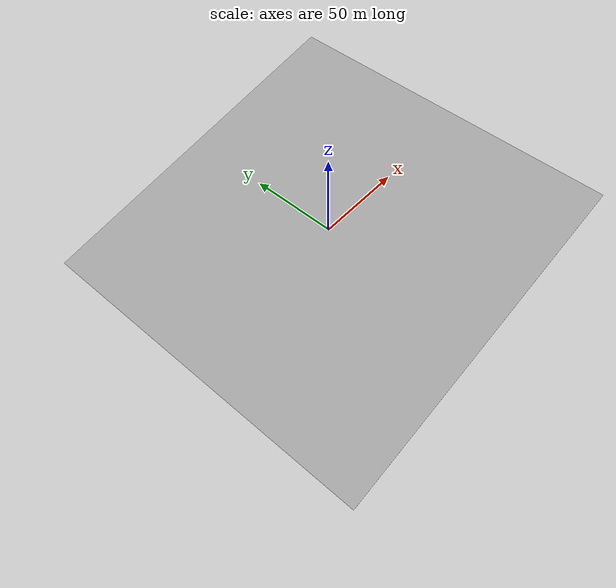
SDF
<?xml version="1.0"?>
<!-- Gazebo Classic test world: the ground is a plane tilted 10 degrees about y
     (downhill toward -x). Used to show whether wheel friction reaches the sim. -->
<sdf version="1.6">
  <world name="default">
    <include><uri>model://sun</uri></include>
    <model name="slope">
      <static>true</static>
      <link name="link">
        <collision name="c">
          <geometry><plane><normal>-0.173648 0 0.984808</normal><size>200 200</size></plane></geometry>
          <surface><friction><ode><mu>100</mu><mu2>100</mu2></ode></friction></surface>
        </collision>
        <visual name="v">
          <geometry><plane><normal>-0.173648 0 0.984808</normal><size>200 200</size></plane></geometry>
        </visual>
      </link>
    </model>
  </world>
</sdf>
